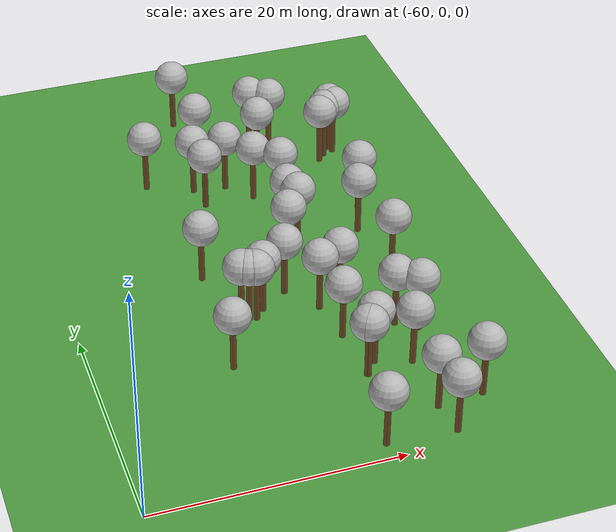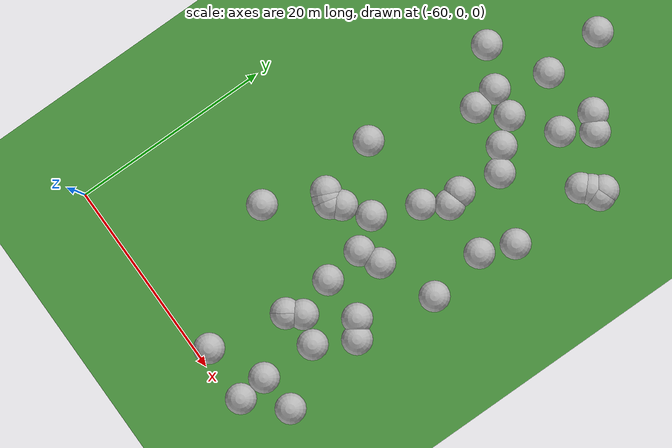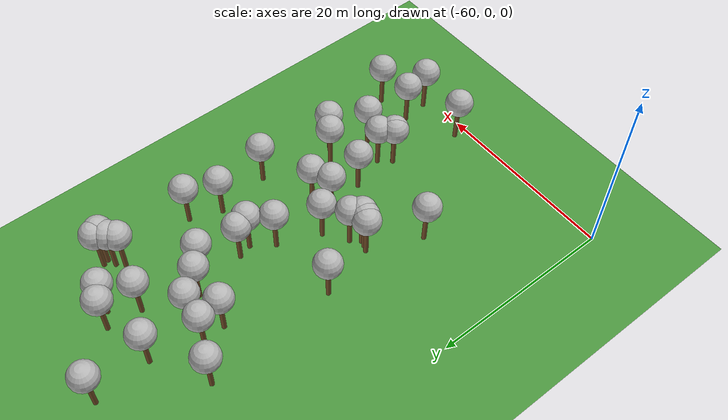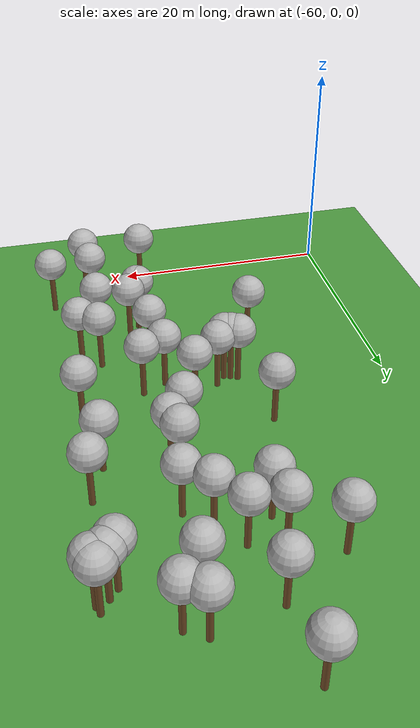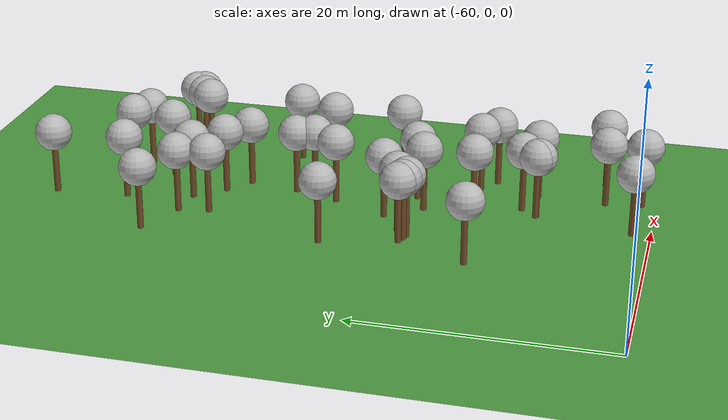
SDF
<sdf version="1.5">
 <world name="default">
  <model name="tree_simple489">
   <static>1</static>
   <link name="link">
    <pose>0 0 0.1 0 -0 0</pose>
    <collision name="collision_trunk">
     <pose>0 0 2 0 -0 0</pose>
     <geometry><cylinder><radius>0.25</radius><length>4</length></cylinder></geometry>
    </collision>
    <collision name="collision_treetop">
     <pose>0 0 5.2 0 -0 0</pose>
     <geometry><sphere><radius>1.5</radius></sphere></geometry>
    </collision>
    <visual name="trunk">
     <pose>0 0 2 0 -0 0</pose>
     <geometry><cylinder><radius>0.25</radius><length>4</length></cylinder></geometry>
     <material>
      <script>
       <uri>model://tree_simple/scripts</uri>
       <uri>model://tree_simple/materials/textures</uri>
       <name>TreeSimple/Trunk</name>
      </script>
     </material>
    </visual>
    <visual name="treetop">
     <pose>0 0 5.2 0 -0 0</pose>
     <geometry><sphere><radius>1.5</radius></sphere></geometry>
     <material>
      <script>
       <uri>model://tree_simple/scripts</uri>
       <uri>model://tree_simple/materials/textures</uri>
       <name>TreeSimple/Treetop</name>
      </script>
     </material>
    </visual>
   </link>
   <pose>-32.6634579524 39.3278172931 0 0 -0 0</pose>
  </model>
  <model name="tree_simple482">
   <static>1</static>
   <link name="link">
    <pose>0 0 0.1 0 -0 0</pose>
    <collision name="collision_trunk">
     <pose>0 0 2 0 -0 0</pose>
     <geometry><cylinder><radius>0.25</radius><length>4</length></cylinder></geometry>
    </collision>
    <collision name="collision_treetop">
     <pose>0 0 5.2 0 -0 0</pose>
     <geometry><sphere><radius>1.5</radius></sphere></geometry>
    </collision>
    <visual name="trunk">
     <pose>0 0 2 0 -0 0</pose>
     <geometry><cylinder><radius>0.25</radius><length>4</length></cylinder></geometry>
     <material>
      <script>
       <uri>model://tree_simple/scripts</uri>
       <uri>model://tree_simple/materials/textures</uri>
       <name>TreeSimple/Trunk</name>
      </script>
     </material>
    </visual>
    <visual name="treetop">
     <pose>0 0 5.2 0 -0 0</pose>
     <geometry><sphere><radius>1.5</radius></sphere></geometry>
     <material>
      <script>
       <uri>model://tree_simple/scripts</uri>
       <uri>model://tree_simple/materials/textures</uri>
       <name>TreeSimple/Treetop</name>
      </script>
     </material>
    </visual>
   </link>
   <pose>-31.7137183406 39.6850484597 0 0 -0 0</pose>
  </model>
  <model name="tree_simple476">
   <static>1</static>
   <link name="link">
    <pose>0 0 0.1 0 -0 0</pose>
    <collision name="collision_trunk">
     <pose>0 0 2 0 -0 0</pose>
     <geometry><cylinder><radius>0.25</radius><length>4</length></cylinder></geometry>
    </collision>
    <collision name="collision_treetop">
     <pose>0 0 5.2 0 -0 0</pose>
     <geometry><sphere><radius>1.5</radius></sphere></geometry>
    </collision>
    <visual name="trunk">
     <pose>0 0 2 0 -0 0</pose>
     <geometry><cylinder><radius>0.25</radius><length>4</length></cylinder></geometry>
     <material>
      <script>
       <uri>model://tree_simple/scripts</uri>
       <uri>model://tree_simple/materials/textures</uri>
       <name>TreeSimple/Trunk</name>
      </script>
     </material>
    </visual>
    <visual name="treetop">
     <pose>0 0 5.2 0 -0 0</pose>
     <geometry><sphere><radius>1.5</radius></sphere></geometry>
     <material>
      <script>
       <uri>model://tree_simple/scripts</uri>
       <uri>model://tree_simple/materials/textures</uri>
       <name>TreeSimple/Treetop</name>
      </script>
     </material>
    </visual>
   </link>
   <pose>-40.490555579 18.243153787 0 0 -0 0</pose>
  </model>
  <model name="tree_simple474">
   <static>1</static>
   <link name="link">
    <pose>0 0 0.1 0 -0 0</pose>
    <collision name="collision_trunk">
     <pose>0 0 2 0 -0 0</pose>
     <geometry><cylinder><radius>0.25</radius><length>4</length></cylinder></geometry>
    </collision>
    <collision name="collision_treetop">
     <pose>0 0 5.2 0 -0 0</pose>
     <geometry><sphere><radius>1.5</radius></sphere></geometry>
    </collision>
    <visual name="trunk">
     <pose>0 0 2 0 -0 0</pose>
     <geometry><cylinder><radius>0.25</radius><length>4</length></cylinder></geometry>
     <material>
      <script>
       <uri>model://tree_simple/scripts</uri>
       <uri>model://tree_simple/materials/textures</uri>
       <name>TreeSimple/Trunk</name>
      </script>
     </material>
    </visual>
    <visual name="treetop">
     <pose>0 0 5.2 0 -0 0</pose>
     <geometry><sphere><radius>1.5</radius></sphere></geometry>
     <material>
      <script>
       <uri>model://tree_simple/scripts</uri>
       <uri>model://tree_simple/materials/textures</uri>
       <name>TreeSimple/Treetop</name>
      </script>
     </material>
    </visual>
   </link>
   <pose>-45.5609359524 37.3889677829 0 0 -0 0</pose>
  </model>
  <model name="tree_simple470">
   <static>1</static>
   <link name="link">
    <pose>0 0 0.1 0 -0 0</pose>
    <collision name="collision_trunk">
     <pose>0 0 2 0 -0 0</pose>
     <geometry><cylinder><radius>0.25</radius><length>4</length></cylinder></geometry>
    </collision>
    <collision name="collision_treetop">
     <pose>0 0 5.2 0 -0 0</pose>
     <geometry><sphere><radius>1.5</radius></sphere></geometry>
    </collision>
    <visual name="trunk">
     <pose>0 0 2 0 -0 0</pose>
     <geometry><cylinder><radius>0.25</radius><length>4</length></cylinder></geometry>
     <material>
      <script>
       <uri>model://tree_simple/scripts</uri>
       <uri>model://tree_simple/materials/textures</uri>
       <name>TreeSimple/Trunk</name>
      </script>
     </material>
    </visual>
    <visual name="treetop">
     <pose>0 0 5.2 0 -0 0</pose>
     <geometry><sphere><radius>1.5</radius></sphere></geometry>
     <material>
      <script>
       <uri>model://tree_simple/scripts</uri>
       <uri>model://tree_simple/materials/textures</uri>
       <name>TreeSimple/Treetop</name>
      </script>
     </material>
    </visual>
   </link>
   <pose>-42.5418923399 21.0598314505 0 0 -0 0</pose>
  </model>
  <model name="tree_simple467">
   <static>1</static>
   <link name="link">
    <pose>0 0 0.1 0 -0 0</pose>
    <collision name="collision_trunk">
     <pose>0 0 2 0 -0 0</pose>
     <geometry><cylinder><radius>0.25</radius><length>4</length></cylinder></geometry>
    </collision>
    <collision name="collision_treetop">
     <pose>0 0 5.2 0 -0 0</pose>
     <geometry><sphere><radius>1.5</radius></sphere></geometry>
    </collision>
    <visual name="trunk">
     <pose>0 0 2 0 -0 0</pose>
     <geometry><cylinder><radius>0.25</radius><length>4</length></cylinder></geometry>
     <material>
      <script>
       <uri>model://tree_simple/scripts</uri>
       <uri>model://tree_simple/materials/textures</uri>
       <name>TreeSimple/Trunk</name>
      </script>
     </material>
    </visual>
    <visual name="treetop">
     <pose>0 0 5.2 0 -0 0</pose>
     <geometry><sphere><radius>1.5</radius></sphere></geometry>
     <material>
      <script>
       <uri>model://tree_simple/scripts</uri>
       <uri>model://tree_simple/materials/textures</uri>
       <name>TreeSimple/Treetop</name>
      </script>
     </material>
    </visual>
   </link>
   <pose>-38.4435588212 19.1731926836 0 0 -0 0</pose>
  </model>
  <model name="tree_simple462">
   <static>1</static>
   <link name="link">
    <pose>0 0 0.1 0 -0 0</pose>
    <collision name="collision_trunk">
     <pose>0 0 2 0 -0 0</pose>
     <geometry><cylinder><radius>0.25</radius><length>4</length></cylinder></geometry>
    </collision>
    <collision name="collision_treetop">
     <pose>0 0 5.2 0 -0 0</pose>
     <geometry><sphere><radius>1.5</radius></sphere></geometry>
    </collision>
    <visual name="trunk">
     <pose>0 0 2 0 -0 0</pose>
     <geometry><cylinder><radius>0.25</radius><length>4</length></cylinder></geometry>
     <material>
      <script>
       <uri>model://tree_simple/scripts</uri>
       <uri>model://tree_simple/materials/textures</uri>
       <name>TreeSimple/Trunk</name>
      </script>
     </material>
    </visual>
    <visual name="treetop">
     <pose>0 0 5.2 0 -0 0</pose>
     <geometry><sphere><radius>1.5</radius></sphere></geometry>
     <material>
      <script>
       <uri>model://tree_simple/scripts</uri>
       <uri>model://tree_simple/materials/textures</uri>
       <name>TreeSimple/Treetop</name>
      </script>
     </material>
    </visual>
   </link>
   <pose>-33.3479265171 38.6010387018 0 0 -0 0</pose>
  </model>
  <model name="tree_simple455">
   <static>1</static>
   <link name="link">
    <pose>0 0 0.1 0 -0 0</pose>
    <collision name="collision_trunk">
     <pose>0 0 2 0 -0 0</pose>
     <geometry><cylinder><radius>0.25</radius><length>4</length></cylinder></geometry>
    </collision>
    <collision name="collision_treetop">
     <pose>0 0 5.2 0 -0 0</pose>
     <geometry><sphere><radius>1.5</radius></sphere></geometry>
    </collision>
    <visual name="trunk">
     <pose>0 0 2 0 -0 0</pose>
     <geometry><cylinder><radius>0.25</radius><length>4</length></cylinder></geometry>
     <material>
      <script>
       <uri>model://tree_simple/scripts</uri>
       <uri>model://tree_simple/materials/textures</uri>
       <name>TreeSimple/Trunk</name>
      </script>
     </material>
    </visual>
    <visual name="treetop">
     <pose>0 0 5.2 0 -0 0</pose>
     <geometry><sphere><radius>1.5</radius></sphere></geometry>
     <material>
      <script>
       <uri>model://tree_simple/scripts</uri>
       <uri>model://tree_simple/materials/textures</uri>
       <name>TreeSimple/Treetop</name>
      </script>
     </material>
    </visual>
   </link>
   <pose>-32.1346913749 4.45623468988 0 0 -0 0</pose>
  </model>
  <model name="tree_simple437">
   <static>1</static>
   <link name="link">
    <pose>0 0 0.1 0 -0 0</pose>
    <collision name="collision_trunk">
     <pose>0 0 2 0 -0 0</pose>
     <geometry><cylinder><radius>0.25</radius><length>4</length></cylinder></geometry>
    </collision>
    <collision name="collision_treetop">
     <pose>0 0 5.2 0 -0 0</pose>
     <geometry><sphere><radius>1.5</radius></sphere></geometry>
    </collision>
    <visual name="trunk">
     <pose>0 0 2 0 -0 0</pose>
     <geometry><cylinder><radius>0.25</radius><length>4</length></cylinder></geometry>
     <material>
      <script>
       <uri>model://tree_simple/scripts</uri>
       <uri>model://tree_simple/materials/textures</uri>
       <name>TreeSimple/Trunk</name>
      </script>
     </material>
    </visual>
    <visual name="treetop">
     <pose>0 0 5.2 0 -0 0</pose>
     <geometry><sphere><radius>1.5</radius></sphere></geometry>
     <material>
      <script>
       <uri>model://tree_simple/scripts</uri>
       <uri>model://tree_simple/materials/textures</uri>
       <name>TreeSimple/Treetop</name>
      </script>
     </material>
    </visual>
   </link>
   <pose>-39.7170299969 9.24665194356 0 0 -0 0</pose>
  </model>
  <model name="tree_simple420">
   <static>1</static>
   <link name="link">
    <pose>0 0 0.1 0 -0 0</pose>
    <collision name="collision_trunk">
     <pose>0 0 2 0 -0 0</pose>
     <geometry><cylinder><radius>0.25</radius><length>4</length></cylinder></geometry>
    </collision>
    <collision name="collision_treetop">
     <pose>0 0 5.2 0 -0 0</pose>
     <geometry><sphere><radius>1.5</radius></sphere></geometry>
    </collision>
    <visual name="trunk">
     <pose>0 0 2 0 -0 0</pose>
     <geometry><cylinder><radius>0.25</radius><length>4</length></cylinder></geometry>
     <material>
      <script>
       <uri>model://tree_simple/scripts</uri>
       <uri>model://tree_simple/materials/textures</uri>
       <name>TreeSimple/Trunk</name>
      </script>
     </material>
    </visual>
    <visual name="treetop">
     <pose>0 0 5.2 0 -0 0</pose>
     <geometry><sphere><radius>1.5</radius></sphere></geometry>
     <material>
      <script>
       <uri>model://tree_simple/scripts</uri>
       <uri>model://tree_simple/materials/textures</uri>
       <name>TreeSimple/Treetop</name>
      </script>
     </material>
    </visual>
   </link>
   <pose>-46.8738530937 18.9140158148 0 0 -0 0</pose>
  </model>
  <model name="tree_simple410">
   <static>1</static>
   <link name="link">
    <pose>0 0 0.1 0 -0 0</pose>
    <collision name="collision_trunk">
     <pose>0 0 2 0 -0 0</pose>
     <geometry><cylinder><radius>0.25</radius><length>4</length></cylinder></geometry>
    </collision>
    <collision name="collision_treetop">
     <pose>0 0 5.2 0 -0 0</pose>
     <geometry><sphere><radius>1.5</radius></sphere></geometry>
    </collision>
    <visual name="trunk">
     <pose>0 0 2 0 -0 0</pose>
     <geometry><cylinder><radius>0.25</radius><length>4</length></cylinder></geometry>
     <material>
      <script>
       <uri>model://tree_simple/scripts</uri>
       <uri>model://tree_simple/materials/textures</uri>
       <name>TreeSimple/Trunk</name>
      </script>
     </material>
    </visual>
    <visual name="treetop">
     <pose>0 0 5.2 0 -0 0</pose>
     <geometry><sphere><radius>1.5</radius></sphere></geometry>
     <material>
      <script>
       <uri>model://tree_simple/scripts</uri>
       <uri>model://tree_simple/materials/textures</uri>
       <name>TreeSimple/Treetop</name>
      </script>
     </material>
    </visual>
   </link>
   <pose>-31.9347087499 40.2537422087 0 0 -0 0</pose>
  </model>
  <model name="tree_simple383">
   <static>1</static>
   <link name="link">
    <pose>0 0 0.1 0 -0 0</pose>
    <collision name="collision_trunk">
     <pose>0 0 2 0 -0 0</pose>
     <geometry><cylinder><radius>0.25</radius><length>4</length></cylinder></geometry>
    </collision>
    <collision name="collision_treetop">
     <pose>0 0 5.2 0 -0 0</pose>
     <geometry><sphere><radius>1.5</radius></sphere></geometry>
    </collision>
    <visual name="trunk">
     <pose>0 0 2 0 -0 0</pose>
     <geometry><cylinder><radius>0.25</radius><length>4</length></cylinder></geometry>
     <material>
      <script>
       <uri>model://tree_simple/scripts</uri>
       <uri>model://tree_simple/materials/textures</uri>
       <name>TreeSimple/Trunk</name>
      </script>
     </material>
    </visual>
    <visual name="treetop">
     <pose>0 0 5.2 0 -0 0</pose>
     <geometry><sphere><radius>1.5</radius></sphere></geometry>
     <material>
      <script>
       <uri>model://tree_simple/scripts</uri>
       <uri>model://tree_simple/materials/textures</uri>
       <name>TreeSimple/Treetop</name>
      </script>
     </material>
    </visual>
   </link>
   <pose>-39.6589333601 9.20891740709 0 0 -0 0</pose>
  </model>
  <model name="tree_simple336">
   <static>1</static>
   <link name="link">
    <pose>0 0 0.1 0 -0 0</pose>
    <collision name="collision_trunk">
     <pose>0 0 2 0 -0 0</pose>
     <geometry><cylinder><radius>0.25</radius><length>4</length></cylinder></geometry>
    </collision>
    <collision name="collision_treetop">
     <pose>0 0 5.2 0 -0 0</pose>
     <geometry><sphere><radius>1.5</radius></sphere></geometry>
    </collision>
    <visual name="trunk">
     <pose>0 0 2 0 -0 0</pose>
     <geometry><cylinder><radius>0.25</radius><length>4</length></cylinder></geometry>
     <material>
      <script>
       <uri>model://tree_simple/scripts</uri>
       <uri>model://tree_simple/materials/textures</uri>
       <name>TreeSimple/Trunk</name>
      </script>
     </material>
    </visual>
    <visual name="treetop">
     <pose>0 0 5.2 0 -0 0</pose>
     <geometry><sphere><radius>1.5</radius></sphere></geometry>
     <material>
      <script>
       <uri>model://tree_simple/scripts</uri>
       <uri>model://tree_simple/materials/textures</uri>
       <name>TreeSimple/Treetop</name>
      </script>
     </material>
    </visual>
   </link>
   <pose>-43.9020074738 42.4187815875 0 0 -0 0</pose>
  </model>
  <model name="tree_simple333">
   <static>1</static>
   <link name="link">
    <pose>0 0 0.1 0 -0 0</pose>
    <collision name="collision_trunk">
     <pose>0 0 2 0 -0 0</pose>
     <geometry><cylinder><radius>0.25</radius><length>4</length></cylinder></geometry>
    </collision>
    <collision name="collision_treetop">
     <pose>0 0 5.2 0 -0 0</pose>
     <geometry><sphere><radius>1.5</radius></sphere></geometry>
    </collision>
    <visual name="trunk">
     <pose>0 0 2 0 -0 0</pose>
     <geometry><cylinder><radius>0.25</radius><length>4</length></cylinder></geometry>
     <material>
      <script>
       <uri>model://tree_simple/scripts</uri>
       <uri>model://tree_simple/materials/textures</uri>
       <name>TreeSimple/Trunk</name>
      </script>
     </material>
    </visual>
    <visual name="treetop">
     <pose>0 0 5.2 0 -0 0</pose>
     <geometry><sphere><radius>1.5</radius></sphere></geometry>
     <material>
      <script>
       <uri>model://tree_simple/scripts</uri>
       <uri>model://tree_simple/materials/textures</uri>
       <name>TreeSimple/Treetop</name>
      </script>
     </material>
    </visual>
   </link>
   <pose>-39.9457212117 14.2708629915 0 0 -0 0</pose>
  </model>
  <model name="tree_simple331">
   <static>1</static>
   <link name="link">
    <pose>0 0 0.1 0 -0 0</pose>
    <collision name="collision_trunk">
     <pose>0 0 2 0 -0 0</pose>
     <geometry><cylinder><radius>0.25</radius><length>4</length></cylinder></geometry>
    </collision>
    <collision name="collision_treetop">
     <pose>0 0 5.2 0 -0 0</pose>
     <geometry><sphere><radius>1.5</radius></sphere></geometry>
    </collision>
    <visual name="trunk">
     <pose>0 0 2 0 -0 0</pose>
     <geometry><cylinder><radius>0.25</radius><length>4</length></cylinder></geometry>
     <material>
      <script>
       <uri>model://tree_simple/scripts</uri>
       <uri>model://tree_simple/materials/textures</uri>
       <name>TreeSimple/Trunk</name>
      </script>
     </material>
    </visual>
    <visual name="treetop">
     <pose>0 0 5.2 0 -0 0</pose>
     <geometry><sphere><radius>1.5</radius></sphere></geometry>
     <material>
      <script>
       <uri>model://tree_simple/scripts</uri>
       <uri>model://tree_simple/materials/textures</uri>
       <name>TreeSimple/Treetop</name>
      </script>
     </material>
    </visual>
   </link>
   <pose>-40.8341940448 34.8238319948 0 0 -0 0</pose>
  </model>
  <model name="tree_simple319">
   <static>1</static>
   <link name="link">
    <pose>0 0 0.1 0 -0 0</pose>
    <collision name="collision_trunk">
     <pose>0 0 2 0 -0 0</pose>
     <geometry><cylinder><radius>0.25</radius><length>4</length></cylinder></geometry>
    </collision>
    <collision name="collision_treetop">
     <pose>0 0 5.2 0 -0 0</pose>
     <geometry><sphere><radius>1.5</radius></sphere></geometry>
    </collision>
    <visual name="trunk">
     <pose>0 0 2 0 -0 0</pose>
     <geometry><cylinder><radius>0.25</radius><length>4</length></cylinder></geometry>
     <material>
      <script>
       <uri>model://tree_simple/scripts</uri>
       <uri>model://tree_simple/materials/textures</uri>
       <name>TreeSimple/Trunk</name>
      </script>
     </material>
    </visual>
    <visual name="treetop">
     <pose>0 0 5.2 0 -0 0</pose>
     <geometry><sphere><radius>1.5</radius></sphere></geometry>
     <material>
      <script>
       <uri>model://tree_simple/scripts</uri>
       <uri>model://tree_simple/materials/textures</uri>
       <name>TreeSimple/Treetop</name>
      </script>
     </material>
    </visual>
   </link>
   <pose>-33.8227496689 27.309967617 0 0 -0 0</pose>
  </model>
  <model name="tree_simple311">
   <static>1</static>
   <link name="link">
    <pose>0 0 0.1 0 -0 0</pose>
    <collision name="collision_trunk">
     <pose>0 0 2 0 -0 0</pose>
     <geometry><cylinder><radius>0.25</radius><length>4</length></cylinder></geometry>
    </collision>
    <collision name="collision_treetop">
     <pose>0 0 5.2 0 -0 0</pose>
     <geometry><sphere><radius>1.5</radius></sphere></geometry>
    </collision>
    <visual name="trunk">
     <pose>0 0 2 0 -0 0</pose>
     <geometry><cylinder><radius>0.25</radius><length>4</length></cylinder></geometry>
     <material>
      <script>
       <uri>model://tree_simple/scripts</uri>
       <uri>model://tree_simple/materials/textures</uri>
       <name>TreeSimple/Trunk</name>
      </script>
     </material>
    </visual>
    <visual name="treetop">
     <pose>0 0 5.2 0 -0 0</pose>
     <geometry><sphere><radius>1.5</radius></sphere></geometry>
     <material>
      <script>
       <uri>model://tree_simple/scripts</uri>
       <uri>model://tree_simple/materials/textures</uri>
       <name>TreeSimple/Treetop</name>
      </script>
     </material>
    </visual>
   </link>
   <pose>-49.3857645653 39.1709388153 0 0 -0 0</pose>
  </model>
  <model name="tree_simple291">
   <static>1</static>
   <link name="link">
    <pose>0 0 0.1 0 -0 0</pose>
    <collision name="collision_trunk">
     <pose>0 0 2 0 -0 0</pose>
     <geometry><cylinder><radius>0.25</radius><length>4</length></cylinder></geometry>
    </collision>
    <collision name="collision_treetop">
     <pose>0 0 5.2 0 -0 0</pose>
     <geometry><sphere><radius>1.5</radius></sphere></geometry>
    </collision>
    <visual name="trunk">
     <pose>0 0 2 0 -0 0</pose>
     <geometry><cylinder><radius>0.25</radius><length>4</length></cylinder></geometry>
     <material>
      <script>
       <uri>model://tree_simple/scripts</uri>
       <uri>model://tree_simple/materials/textures</uri>
       <name>TreeSimple/Trunk</name>
      </script>
     </material>
    </visual>
    <visual name="treetop">
     <pose>0 0 5.2 0 -0 0</pose>
     <geometry><sphere><radius>1.5</radius></sphere></geometry>
     <material>
      <script>
       <uri>model://tree_simple/scripts</uri>
       <uri>model://tree_simple/materials/textures</uri>
       <name>TreeSimple/Treetop</name>
      </script>
     </material>
    </visual>
   </link>
   <pose>-38.780558868 40.0860126223 0 0 -0 0</pose>
  </model>
  <model name="tree_simple289">
   <static>1</static>
   <link name="link">
    <pose>0 0 0.1 0 -0 0</pose>
    <collision name="collision_trunk">
     <pose>0 0 2 0 -0 0</pose>
     <geometry><cylinder><radius>0.25</radius><length>4</length></cylinder></geometry>
    </collision>
    <collision name="collision_treetop">
     <pose>0 0 5.2 0 -0 0</pose>
     <geometry><sphere><radius>1.5</radius></sphere></geometry>
    </collision>
    <visual name="trunk">
     <pose>0 0 2 0 -0 0</pose>
     <geometry><cylinder><radius>0.25</radius><length>4</length></cylinder></geometry>
     <material>
      <script>
       <uri>model://tree_simple/scripts</uri>
       <uri>model://tree_simple/materials/textures</uri>
       <name>TreeSimple/Trunk</name>
      </script>
     </material>
    </visual>
    <visual name="treetop">
     <pose>0 0 5.2 0 -0 0</pose>
     <geometry><sphere><radius>1.5</radius></sphere></geometry>
     <material>
      <script>
       <uri>model://tree_simple/scripts</uri>
       <uri>model://tree_simple/materials/textures</uri>
       <name>TreeSimple/Treetop</name>
      </script>
     </material>
    </visual>
   </link>
   <pose>-35.9302757768 4.10324936235 0 0 -0 0</pose>
  </model>
  <model name="tree_simple286">
   <static>1</static>
   <link name="link">
    <pose>0 0 0.1 0 -0 0</pose>
    <collision name="collision_trunk">
     <pose>0 0 2 0 -0 0</pose>
     <geometry><cylinder><radius>0.25</radius><length>4</length></cylinder></geometry>
    </collision>
    <collision name="collision_treetop">
     <pose>0 0 5.2 0 -0 0</pose>
     <geometry><sphere><radius>1.5</radius></sphere></geometry>
    </collision>
    <visual name="trunk">
     <pose>0 0 2 0 -0 0</pose>
     <geometry><cylinder><radius>0.25</radius><length>4</length></cylinder></geometry>
     <material>
      <script>
       <uri>model://tree_simple/scripts</uri>
       <uri>model://tree_simple/materials/textures</uri>
       <name>TreeSimple/Trunk</name>
      </script>
     </material>
    </visual>
    <visual name="treetop">
     <pose>0 0 5.2 0 -0 0</pose>
     <geometry><sphere><radius>1.5</radius></sphere></geometry>
     <material>
      <script>
       <uri>model://tree_simple/scripts</uri>
       <uri>model://tree_simple/materials/textures</uri>
       <name>TreeSimple/Treetop</name>
      </script>
     </material>
    </visual>
   </link>
   <pose>-48.4343960976 24.9011596552 0 0 -0 0</pose>
  </model>
  <model name="tree_simple256">
   <static>1</static>
   <link name="link">
    <pose>0 0 0.1 0 -0 0</pose>
    <collision name="collision_trunk">
     <pose>0 0 2 0 -0 0</pose>
     <geometry><cylinder><radius>0.25</radius><length>4</length></cylinder></geometry>
    </collision>
    <collision name="collision_treetop">
     <pose>0 0 5.2 0 -0 0</pose>
     <geometry><sphere><radius>1.5</radius></sphere></geometry>
    </collision>
    <visual name="trunk">
     <pose>0 0 2 0 -0 0</pose>
     <geometry><cylinder><radius>0.25</radius><length>4</length></cylinder></geometry>
     <material>
      <script>
       <uri>model://tree_simple/scripts</uri>
       <uri>model://tree_simple/materials/textures</uri>
       <name>TreeSimple/Trunk</name>
      </script>
     </material>
    </visual>
    <visual name="treetop">
     <pose>0 0 5.2 0 -0 0</pose>
     <geometry><sphere><radius>1.5</radius></sphere></geometry>
     <material>
      <script>
       <uri>model://tree_simple/scripts</uri>
       <uri>model://tree_simple/materials/textures</uri>
       <name>TreeSimple/Treetop</name>
      </script>
     </material>
    </visual>
   </link>
   <pose>-38.4325558623 43.6568851864 0 0 -0 0</pose>
  </model>
  <model name="tree_simple252">
   <static>1</static>
   <link name="link">
    <pose>0 0 0.1 0 -0 0</pose>
    <collision name="collision_trunk">
     <pose>0 0 2 0 -0 0</pose>
     <geometry><cylinder><radius>0.25</radius><length>4</length></cylinder></geometry>
    </collision>
    <collision name="collision_treetop">
     <pose>0 0 5.2 0 -0 0</pose>
     <geometry><sphere><radius>1.5</radius></sphere></geometry>
    </collision>
    <visual name="trunk">
     <pose>0 0 2 0 -0 0</pose>
     <geometry><cylinder><radius>0.25</radius><length>4</length></cylinder></geometry>
     <material>
      <script>
       <uri>model://tree_simple/scripts</uri>
       <uri>model://tree_simple/materials/textures</uri>
       <name>TreeSimple/Trunk</name>
      </script>
     </material>
    </visual>
    <visual name="treetop">
     <pose>0 0 5.2 0 -0 0</pose>
     <geometry><sphere><radius>1.5</radius></sphere></geometry>
     <material>
      <script>
       <uri>model://tree_simple/scripts</uri>
       <uri>model://tree_simple/materials/textures</uri>
       <name>TreeSimple/Treetop</name>
      </script>
     </material>
    </visual>
   </link>
   <pose>-49.2857495086 13.2768548842 0 0 -0 0</pose>
  </model>
  <model name="tree_simple247">
   <static>1</static>
   <link name="link">
    <pose>0 0 0.1 0 -0 0</pose>
    <collision name="collision_trunk">
     <pose>0 0 2 0 -0 0</pose>
     <geometry><cylinder><radius>0.25</radius><length>4</length></cylinder></geometry>
    </collision>
    <collision name="collision_treetop">
     <pose>0 0 5.2 0 -0 0</pose>
     <geometry><sphere><radius>1.5</radius></sphere></geometry>
    </collision>
    <visual name="trunk">
     <pose>0 0 2 0 -0 0</pose>
     <geometry><cylinder><radius>0.25</radius><length>4</length></cylinder></geometry>
     <material>
      <script>
       <uri>model://tree_simple/scripts</uri>
       <uri>model://tree_simple/materials/textures</uri>
       <name>TreeSimple/Trunk</name>
      </script>
     </material>
    </visual>
    <visual name="treetop">
     <pose>0 0 5.2 0 -0 0</pose>
     <geometry><sphere><radius>1.5</radius></sphere></geometry>
     <material>
      <script>
       <uri>model://tree_simple/scripts</uri>
       <uri>model://tree_simple/materials/textures</uri>
       <name>TreeSimple/Treetop</name>
      </script>
     </material>
    </visual>
   </link>
   <pose>-44.3832388131 48.3955182604 0 0 -0 0</pose>
  </model>
  <model name="tree_simple231">
   <static>1</static>
   <link name="link">
    <pose>0 0 0.1 0 -0 0</pose>
    <collision name="collision_trunk">
     <pose>0 0 2 0 -0 0</pose>
     <geometry><cylinder><radius>0.25</radius><length>4</length></cylinder></geometry>
    </collision>
    <collision name="collision_treetop">
     <pose>0 0 5.2 0 -0 0</pose>
     <geometry><sphere><radius>1.5</radius></sphere></geometry>
    </collision>
    <visual name="trunk">
     <pose>0 0 2 0 -0 0</pose>
     <geometry><cylinder><radius>0.25</radius><length>4</length></cylinder></geometry>
     <material>
      <script>
       <uri>model://tree_simple/scripts</uri>
       <uri>model://tree_simple/materials/textures</uri>
       <name>TreeSimple/Trunk</name>
      </script>
     </material>
    </visual>
    <visual name="treetop">
     <pose>0 0 5.2 0 -0 0</pose>
     <geometry><sphere><radius>1.5</radius></sphere></geometry>
     <material>
      <script>
       <uri>model://tree_simple/scripts</uri>
       <uri>model://tree_simple/materials/textures</uri>
       <name>TreeSimple/Treetop</name>
      </script>
     </material>
    </visual>
   </link>
   <pose>-35.8338732543 9.59486776234 0 0 -0 0</pose>
  </model>
  <model name="tree_simple218">
   <static>1</static>
   <link name="link">
    <pose>0 0 0.1 0 -0 0</pose>
    <collision name="collision_trunk">
     <pose>0 0 2 0 -0 0</pose>
     <geometry><cylinder><radius>0.25</radius><length>4</length></cylinder></geometry>
    </collision>
    <collision name="collision_treetop">
     <pose>0 0 5.2 0 -0 0</pose>
     <geometry><sphere><radius>1.5</radius></sphere></geometry>
    </collision>
    <visual name="trunk">
     <pose>0 0 2 0 -0 0</pose>
     <geometry><cylinder><radius>0.25</radius><length>4</length></cylinder></geometry>
     <material>
      <script>
       <uri>model://tree_simple/scripts</uri>
       <uri>model://tree_simple/materials/textures</uri>
       <name>TreeSimple/Trunk</name>
      </script>
     </material>
    </visual>
    <visual name="treetop">
     <pose>0 0 5.2 0 -0 0</pose>
     <geometry><sphere><radius>1.5</radius></sphere></geometry>
     <material>
      <script>
       <uri>model://tree_simple/scripts</uri>
       <uri>model://tree_simple/materials/textures</uri>
       <name>TreeSimple/Treetop</name>
      </script>
     </material>
    </visual>
   </link>
   <pose>-35.4441673734 14.4296379782 0 0 -0 0</pose>
  </model>
  <model name="tree_simple209">
   <static>1</static>
   <link name="link">
    <pose>0 0 0.1 0 -0 0</pose>
    <collision name="collision_trunk">
     <pose>0 0 2 0 -0 0</pose>
     <geometry><cylinder><radius>0.25</radius><length>4</length></cylinder></geometry>
    </collision>
    <collision name="collision_treetop">
     <pose>0 0 5.2 0 -0 0</pose>
     <geometry><sphere><radius>1.5</radius></sphere></geometry>
    </collision>
    <visual name="trunk">
     <pose>0 0 2 0 -0 0</pose>
     <geometry><cylinder><radius>0.25</radius><length>4</length></cylinder></geometry>
     <material>
      <script>
       <uri>model://tree_simple/scripts</uri>
       <uri>model://tree_simple/materials/textures</uri>
       <name>TreeSimple/Trunk</name>
      </script>
     </material>
    </visual>
    <visual name="treetop">
     <pose>0 0 5.2 0 -0 0</pose>
     <geometry><sphere><radius>1.5</radius></sphere></geometry>
     <material>
      <script>
       <uri>model://tree_simple/scripts</uri>
       <uri>model://tree_simple/materials/textures</uri>
       <name>TreeSimple/Treetop</name>
      </script>
     </material>
    </visual>
   </link>
   <pose>-33.8233046725 13.2827932197 0 0 -0 0</pose>
  </model>
  <model name="tree_simple208">
   <static>1</static>
   <link name="link">
    <pose>0 0 0.1 0 -0 0</pose>
    <collision name="collision_trunk">
     <pose>0 0 2 0 -0 0</pose>
     <geometry><cylinder><radius>0.25</radius><length>4</length></cylinder></geometry>
    </collision>
    <collision name="collision_treetop">
     <pose>0 0 5.2 0 -0 0</pose>
     <geometry><sphere><radius>1.5</radius></sphere></geometry>
    </collision>
    <visual name="trunk">
     <pose>0 0 2 0 -0 0</pose>
     <geometry><cylinder><radius>0.25</radius><length>4</length></cylinder></geometry>
     <material>
      <script>
       <uri>model://tree_simple/scripts</uri>
       <uri>model://tree_simple/materials/textures</uri>
       <name>TreeSimple/Trunk</name>
      </script>
     </material>
    </visual>
    <visual name="treetop">
     <pose>0 0 5.2 0 -0 0</pose>
     <geometry><sphere><radius>1.5</radius></sphere></geometry>
     <material>
      <script>
       <uri>model://tree_simple/scripts</uri>
       <uri>model://tree_simple/materials/textures</uri>
       <name>TreeSimple/Treetop</name>
      </script>
     </material>
    </visual>
   </link>
   <pose>-39.1560557195 27.6775865092 0 0 -0 0</pose>
  </model>
  <model name="tree_simple199">
   <static>1</static>
   <link name="link">
    <pose>0 0 0.1 0 -0 0</pose>
    <collision name="collision_trunk">
     <pose>0 0 2 0 -0 0</pose>
     <geometry><cylinder><radius>0.25</radius><length>4</length></cylinder></geometry>
    </collision>
    <collision name="collision_treetop">
     <pose>0 0 5.2 0 -0 0</pose>
     <geometry><sphere><radius>1.5</radius></sphere></geometry>
    </collision>
    <visual name="trunk">
     <pose>0 0 2 0 -0 0</pose>
     <geometry><cylinder><radius>0.25</radius><length>4</length></cylinder></geometry>
     <material>
      <script>
       <uri>model://tree_simple/scripts</uri>
       <uri>model://tree_simple/materials/textures</uri>
       <name>TreeSimple/Trunk</name>
      </script>
     </material>
    </visual>
    <visual name="treetop">
     <pose>0 0 5.2 0 -0 0</pose>
     <geometry><sphere><radius>1.5</radius></sphere></geometry>
     <material>
      <script>
       <uri>model://tree_simple/scripts</uri>
       <uri>model://tree_simple/materials/textures</uri>
       <name>TreeSimple/Treetop</name>
      </script>
     </material>
    </visual>
   </link>
   <pose>-38.6601694544 10.5136228042 0 0 -0 0</pose>
  </model>
  <model name="tree_simple127">
   <static>1</static>
   <link name="link">
    <pose>0 0 0.1 0 -0 0</pose>
    <collision name="collision_trunk">
     <pose>0 0 2 0 -0 0</pose>
     <geometry><cylinder><radius>0.25</radius><length>4</length></cylinder></geometry>
    </collision>
    <collision name="collision_treetop">
     <pose>0 0 5.2 0 -0 0</pose>
     <geometry><sphere><radius>1.5</radius></sphere></geometry>
    </collision>
    <visual name="trunk">
     <pose>0 0 2 0 -0 0</pose>
     <geometry><cylinder><radius>0.25</radius><length>4</length></cylinder></geometry>
     <material>
      <script>
       <uri>model://tree_simple/scripts</uri>
       <uri>model://tree_simple/materials/textures</uri>
       <name>TreeSimple/Trunk</name>
      </script>
     </material>
    </visual>
    <visual name="treetop">
     <pose>0 0 5.2 0 -0 0</pose>
     <geometry><sphere><radius>1.5</radius></sphere></geometry>
     <material>
      <script>
       <uri>model://tree_simple/scripts</uri>
       <uri>model://tree_simple/materials/textures</uri>
       <name>TreeSimple/Treetop</name>
      </script>
     </material>
    </visual>
   </link>
   <pose>-45.7202624904 18.511982554 0 0 -0 0</pose>
  </model>
  <model name="tree_simple122">
   <static>1</static>
   <link name="link">
    <pose>0 0 0.1 0 -0 0</pose>
    <collision name="collision_trunk">
     <pose>0 0 2 0 -0 0</pose>
     <geometry><cylinder><radius>0.25</radius><length>4</length></cylinder></geometry>
    </collision>
    <collision name="collision_treetop">
     <pose>0 0 5.2 0 -0 0</pose>
     <geometry><sphere><radius>1.5</radius></sphere></geometry>
    </collision>
    <visual name="trunk">
     <pose>0 0 2 0 -0 0</pose>
     <geometry><cylinder><radius>0.25</radius><length>4</length></cylinder></geometry>
     <material>
      <script>
       <uri>model://tree_simple/scripts</uri>
       <uri>model://tree_simple/materials/textures</uri>
       <name>TreeSimple/Trunk</name>
      </script>
     </material>
    </visual>
    <visual name="treetop">
     <pose>0 0 5.2 0 -0 0</pose>
     <geometry><sphere><radius>1.5</radius></sphere></geometry>
     <material>
      <script>
       <uri>model://tree_simple/scripts</uri>
       <uri>model://tree_simple/materials/textures</uri>
       <name>TreeSimple/Treetop</name>
      </script>
     </material>
    </visual>
   </link>
   <pose>-44.9070413792 19.4157710588 0 0 -0 0</pose>
  </model>
  <model name="tree_simple117">
   <static>1</static>
   <link name="link">
    <pose>0 0 0.1 0 -0 0</pose>
    <collision name="collision_trunk">
     <pose>0 0 2 0 -0 0</pose>
     <geometry><cylinder><radius>0.25</radius><length>4</length></cylinder></geometry>
    </collision>
    <collision name="collision_treetop">
     <pose>0 0 5.2 0 -0 0</pose>
     <geometry><sphere><radius>1.5</radius></sphere></geometry>
    </collision>
    <visual name="trunk">
     <pose>0 0 2 0 -0 0</pose>
     <geometry><cylinder><radius>0.25</radius><length>4</length></cylinder></geometry>
     <material>
      <script>
       <uri>model://tree_simple/scripts</uri>
       <uri>model://tree_simple/materials/textures</uri>
       <name>TreeSimple/Trunk</name>
      </script>
     </material>
    </visual>
    <visual name="treetop">
     <pose>0 0 5.2 0 -0 0</pose>
     <geometry><sphere><radius>1.5</radius></sphere></geometry>
     <material>
      <script>
       <uri>model://tree_simple/scripts</uri>
       <uri>model://tree_simple/materials/textures</uri>
       <name>TreeSimple/Treetop</name>
      </script>
     </material>
    </visual>
   </link>
   <pose>-46.2827238601 18.6501285005 0 0 -0 0</pose>
  </model>
  <model name="tree_simple112">
   <static>1</static>
   <link name="link">
    <pose>0 0 0.1 0 -0 0</pose>
    <collision name="collision_trunk">
     <pose>0 0 2 0 -0 0</pose>
     <geometry><cylinder><radius>0.25</radius><length>4</length></cylinder></geometry>
    </collision>
    <collision name="collision_treetop">
     <pose>0 0 5.2 0 -0 0</pose>
     <geometry><sphere><radius>1.5</radius></sphere></geometry>
    </collision>
    <visual name="trunk">
     <pose>0 0 2 0 -0 0</pose>
     <geometry><cylinder><radius>0.25</radius><length>4</length></cylinder></geometry>
     <material>
      <script>
       <uri>model://tree_simple/scripts</uri>
       <uri>model://tree_simple/materials/textures</uri>
       <name>TreeSimple/Trunk</name>
      </script>
     </material>
    </visual>
    <visual name="treetop">
     <pose>0 0 5.2 0 -0 0</pose>
     <geometry><sphere><radius>1.5</radius></sphere></geometry>
     <material>
      <script>
       <uri>model://tree_simple/scripts</uri>
       <uri>model://tree_simple/materials/textures</uri>
       <name>TreeSimple/Treetop</name>
      </script>
     </material>
    </visual>
   </link>
   <pose>-36.862810057 42.7576459823 0 0 -0 0</pose>
  </model>
  <model name="tree_simple109">
   <static>1</static>
   <link name="link">
    <pose>0 0 0.1 0 -0 0</pose>
    <collision name="collision_trunk">
     <pose>0 0 2 0 -0 0</pose>
     <geometry><cylinder><radius>0.25</radius><length>4</length></cylinder></geometry>
    </collision>
    <collision name="collision_treetop">
     <pose>0 0 5.2 0 -0 0</pose>
     <geometry><sphere><radius>1.5</radius></sphere></geometry>
    </collision>
    <visual name="trunk">
     <pose>0 0 2 0 -0 0</pose>
     <geometry><cylinder><radius>0.25</radius><length>4</length></cylinder></geometry>
     <material>
      <script>
       <uri>model://tree_simple/scripts</uri>
       <uri>model://tree_simple/materials/textures</uri>
       <name>TreeSimple/Trunk</name>
      </script>
     </material>
    </visual>
    <visual name="treetop">
     <pose>0 0 5.2 0 -0 0</pose>
     <geometry><sphere><radius>1.5</radius></sphere></geometry>
     <material>
      <script>
       <uri>model://tree_simple/scripts</uri>
       <uri>model://tree_simple/materials/textures</uri>
       <name>TreeSimple/Treetop</name>
      </script>
     </material>
    </visual>
   </link>
   <pose>-42.7379400786 37.0728302321 0 0 -0 0</pose>
  </model>
  <model name="tree_simple105">
   <static>1</static>
   <link name="link">
    <pose>0 0 0.1 0 -0 0</pose>
    <collision name="collision_trunk">
     <pose>0 0 2 0 -0 0</pose>
     <geometry><cylinder><radius>0.25</radius><length>4</length></cylinder></geometry>
    </collision>
    <collision name="collision_treetop">
     <pose>0 0 5.2 0 -0 0</pose>
     <geometry><sphere><radius>1.5</radius></sphere></geometry>
    </collision>
    <visual name="trunk">
     <pose>0 0 2 0 -0 0</pose>
     <geometry><cylinder><radius>0.25</radius><length>4</length></cylinder></geometry>
     <material>
      <script>
       <uri>model://tree_simple/scripts</uri>
       <uri>model://tree_simple/materials/textures</uri>
       <name>TreeSimple/Trunk</name>
      </script>
     </material>
    </visual>
    <visual name="treetop">
     <pose>0 0 5.2 0 -0 0</pose>
     <geometry><sphere><radius>1.5</radius></sphere></geometry>
     <material>
      <script>
       <uri>model://tree_simple/scripts</uri>
       <uri>model://tree_simple/materials/textures</uri>
       <name>TreeSimple/Treetop</name>
      </script>
     </material>
    </visual>
   </link>
   <pose>-41.1351668554 1.47782508111 0 0 -0 0</pose>
  </model>
  <model name="tree_simple53">
   <static>1</static>
   <link name="link">
    <pose>0 0 0.1 0 -0 0</pose>
    <collision name="collision_trunk">
     <pose>0 0 2 0 -0 0</pose>
     <geometry><cylinder><radius>0.25</radius><length>4</length></cylinder></geometry>
    </collision>
    <collision name="collision_treetop">
     <pose>0 0 5.2 0 -0 0</pose>
     <geometry><sphere><radius>1.5</radius></sphere></geometry>
    </collision>
    <visual name="trunk">
     <pose>0 0 2 0 -0 0</pose>
     <geometry><cylinder><radius>0.25</radius><length>4</length></cylinder></geometry>
     <material>
      <script>
       <uri>model://tree_simple/scripts</uri>
       <uri>model://tree_simple/materials/textures</uri>
       <name>TreeSimple/Trunk</name>
      </script>
     </material>
    </visual>
    <visual name="treetop">
     <pose>0 0 5.2 0 -0 0</pose>
     <geometry><sphere><radius>1.5</radius></sphere></geometry>
     <material>
      <script>
       <uri>model://tree_simple/scripts</uri>
       <uri>model://tree_simple/materials/textures</uri>
       <name>TreeSimple/Treetop</name>
      </script>
     </material>
    </visual>
   </link>
   <pose>-38.8612108818 33.2267374622 0 0 -0 0</pose>
  </model>
  <model name="tree_simple43">
   <static>1</static>
   <link name="link">
    <pose>0 0 0.1 0 -0 0</pose>
    <collision name="collision_trunk">
     <pose>0 0 2 0 -0 0</pose>
     <geometry><cylinder><radius>0.25</radius><length>4</length></cylinder></geometry>
    </collision>
    <collision name="collision_treetop">
     <pose>0 0 5.2 0 -0 0</pose>
     <geometry><sphere><radius>1.5</radius></sphere></geometry>
    </collision>
    <visual name="trunk">
     <pose>0 0 2 0 -0 0</pose>
     <geometry><cylinder><radius>0.25</radius><length>4</length></cylinder></geometry>
     <material>
      <script>
       <uri>model://tree_simple/scripts</uri>
       <uri>model://tree_simple/materials/textures</uri>
       <name>TreeSimple/Trunk</name>
      </script>
     </material>
    </visual>
    <visual name="treetop">
     <pose>0 0 5.2 0 -0 0</pose>
     <geometry><sphere><radius>1.5</radius></sphere></geometry>
     <material>
      <script>
       <uri>model://tree_simple/scripts</uri>
       <uri>model://tree_simple/materials/textures</uri>
       <name>TreeSimple/Treetop</name>
      </script>
     </material>
    </visual>
   </link>
   <pose>-32.9489924766 21.5371657104 0 0 -0 0</pose>
  </model>
  <model name="tree_simple36">
   <static>1</static>
   <link name="link">
    <pose>0 0 0.1 0 -0 0</pose>
    <collision name="collision_trunk">
     <pose>0 0 2 0 -0 0</pose>
     <geometry><cylinder><radius>0.25</radius><length>4</length></cylinder></geometry>
    </collision>
    <collision name="collision_treetop">
     <pose>0 0 5.2 0 -0 0</pose>
     <geometry><sphere><radius>1.5</radius></sphere></geometry>
    </collision>
    <visual name="trunk">
     <pose>0 0 2 0 -0 0</pose>
     <geometry><cylinder><radius>0.25</radius><length>4</length></cylinder></geometry>
     <material>
      <script>
       <uri>model://tree_simple/scripts</uri>
       <uri>model://tree_simple/materials/textures</uri>
       <name>TreeSimple/Trunk</name>
      </script>
     </material>
    </visual>
    <visual name="treetop">
     <pose>0 0 5.2 0 -0 0</pose>
     <geometry><sphere><radius>1.5</radius></sphere></geometry>
     <material>
      <script>
       <uri>model://tree_simple/scripts</uri>
       <uri>model://tree_simple/materials/textures</uri>
       <name>TreeSimple/Treetop</name>
      </script>
     </material>
    </visual>
   </link>
   <pose>-40.7093037753 25.4885926906 0 0 -0 0</pose>
  </model>
  <model name="tree_simple34">
   <static>1</static>
   <link name="link">
    <pose>0 0 0.1 0 -0 0</pose>
    <collision name="collision_trunk">
     <pose>0 0 2 0 -0 0</pose>
     <geometry><cylinder><radius>0.25</radius><length>4</length></cylinder></geometry>
    </collision>
    <collision name="collision_treetop">
     <pose>0 0 5.2 0 -0 0</pose>
     <geometry><sphere><radius>1.5</radius></sphere></geometry>
    </collision>
    <visual name="trunk">
     <pose>0 0 2 0 -0 0</pose>
     <geometry><cylinder><radius>0.25</radius><length>4</length></cylinder></geometry>
     <material>
      <script>
       <uri>model://tree_simple/scripts</uri>
       <uri>model://tree_simple/materials/textures</uri>
       <name>TreeSimple/Trunk</name>
      </script>
     </material>
    </visual>
    <visual name="treetop">
     <pose>0 0 5.2 0 -0 0</pose>
     <geometry><sphere><radius>1.5</radius></sphere></geometry>
     <material>
      <script>
       <uri>model://tree_simple/scripts</uri>
       <uri>model://tree_simple/materials/textures</uri>
       <name>TreeSimple/Treetop</name>
      </script>
     </material>
    </visual>
   </link>
   <pose>-32.5861870304 30.5926655905 0 0 -0 0</pose>
  </model>
  <model name="tree_simple30">
   <static>1</static>
   <link name="link">
    <pose>0 0 0.1 0 -0 0</pose>
    <collision name="collision_trunk">
     <pose>0 0 2 0 -0 0</pose>
     <geometry><cylinder><radius>0.25</radius><length>4</length></cylinder></geometry>
    </collision>
    <collision name="collision_treetop">
     <pose>0 0 5.2 0 -0 0</pose>
     <geometry><sphere><radius>1.5</radius></sphere></geometry>
    </collision>
    <visual name="trunk">
     <pose>0 0 2 0 -0 0</pose>
     <geometry><cylinder><radius>0.25</radius><length>4</length></cylinder></geometry>
     <material>
      <script>
       <uri>model://tree_simple/scripts</uri>
       <uri>model://tree_simple/materials/textures</uri>
       <name>TreeSimple/Trunk</name>
      </script>
     </material>
    </visual>
    <visual name="treetop">
     <pose>0 0 5.2 0 -0 0</pose>
     <geometry><sphere><radius>1.5</radius></sphere></geometry>
     <material>
      <script>
       <uri>model://tree_simple/scripts</uri>
       <uri>model://tree_simple/materials/textures</uri>
       <name>TreeSimple/Treetop</name>
      </script>
     </material>
    </visual>
   </link>
   <pose>-35.5727327485 1.19199426463 0 0 -0 0</pose>
  </model>
  <model name="tree_simple25">
   <static>1</static>
   <link name="link">
    <pose>0 0 0.1 0 -0 0</pose>
    <collision name="collision_trunk">
     <pose>0 0 2 0 -0 0</pose>
     <geometry><cylinder><radius>0.25</radius><length>4</length></cylinder></geometry>
    </collision>
    <collision name="collision_treetop">
     <pose>0 0 5.2 0 -0 0</pose>
     <geometry><sphere><radius>1.5</radius></sphere></geometry>
    </collision>
    <visual name="trunk">
     <pose>0 0 2 0 -0 0</pose>
     <geometry><cylinder><radius>0.25</radius><length>4</length></cylinder></geometry>
     <material>
      <script>
       <uri>model://tree_simple/scripts</uri>
       <uri>model://tree_simple/materials/textures</uri>
       <name>TreeSimple/Trunk</name>
      </script>
     </material>
    </visual>
    <visual name="treetop">
     <pose>0 0 5.2 0 -0 0</pose>
     <geometry><sphere><radius>1.5</radius></sphere></geometry>
     <material>
      <script>
       <uri>model://tree_simple/scripts</uri>
       <uri>model://tree_simple/materials/textures</uri>
       <name>TreeSimple/Treetop</name>
      </script>
     </material>
    </visual>
   </link>
   <pose>-39.5999688194 29.1164638866 0 0 -0 0</pose>
  </model>
  <model name="tree_simple7">
   <static>1</static>
   <link name="link">
    <pose>0 0 0.1 0 -0 0</pose>
    <collision name="collision_trunk">
     <pose>0 0 2 0 -0 0</pose>
     <geometry><cylinder><radius>0.25</radius><length>4</length></cylinder></geometry>
    </collision>
    <collision name="collision_treetop">
     <pose>0 0 5.2 0 -0 0</pose>
     <geometry><sphere><radius>1.5</radius></sphere></geometry>
    </collision>
    <visual name="trunk">
     <pose>0 0 2 0 -0 0</pose>
     <geometry><cylinder><radius>0.25</radius><length>4</length></cylinder></geometry>
     <material>
      <script>
       <uri>model://tree_simple/scripts</uri>
       <uri>model://tree_simple/materials/textures</uri>
       <name>TreeSimple/Trunk</name>
      </script>
     </material>
    </visual>
    <visual name="treetop">
     <pose>0 0 5.2 0 -0 0</pose>
     <geometry><sphere><radius>1.5</radius></sphere></geometry>
     <material>
      <script>
       <uri>model://tree_simple/scripts</uri>
       <uri>model://tree_simple/materials/textures</uri>
       <name>TreeSimple/Treetop</name>
      </script>
     </material>
    </visual>
   </link>
   <pose>-45.1752630278 34.9225483382 0 0 -0 0</pose>
  </model>
  <model name="ground_plane">
   <static>true</static>
   <link name="link">
    <collision name="collision">
     <geometry><plane><normal>0 0 1</normal><size>250 250</size></plane></geometry>
     <surface><friction><ode><mu>1</mu><mu2>1</mu2></ode></friction></surface>
    </collision>
    <visual name="grass">
     <cast_shadows>false</cast_shadows>
     <geometry><plane><normal>0 0 1</normal><size>150 250</size></plane></geometry>
     <material>
      <script><uri>file://media/materials/scripts/Gazebo.material</uri><name>Gazebo/Grass</name></script>
     </material>
    </visual>
   </link>
  </model>
 </world>
</sdf>
